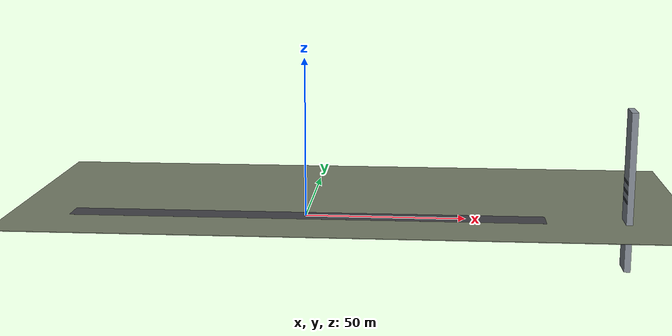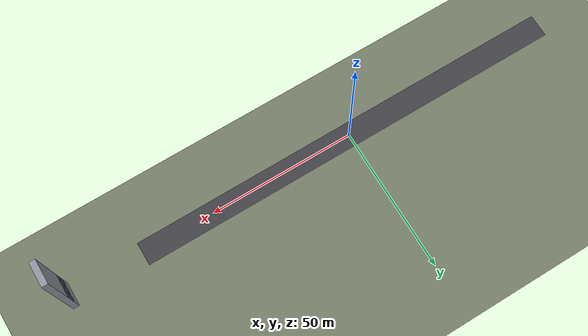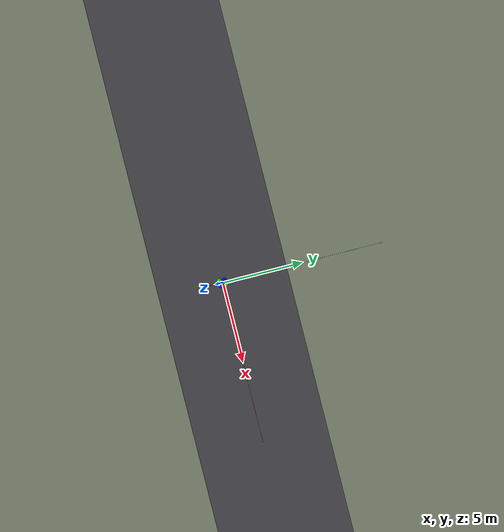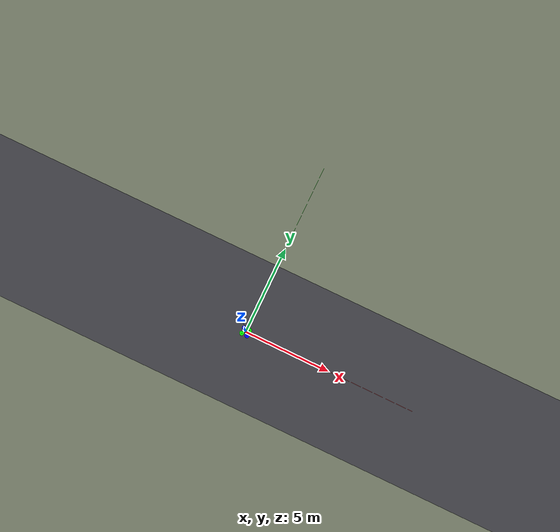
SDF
<?xml version="1.0" ?>
<sdf version="1.9">
  <world name="obstacle_course">
    <physics name="1ms" type="ignore">
      <max_step_size>0.001</max_step_size>
      <real_time_factor>1.0</real_time_factor>
    </physics>

    <plugin filename="gz-sim-physics-system"
      name="gz::sim::systems::Physics">
    </plugin>
    <plugin
      filename="gz-sim-sensors-system"
      name="gz::sim::systems::Sensors">
      <render_engine>ogre2</render_engine>
    </plugin>
    <plugin filename="gz-sim-user-commands-system"
      name="gz::sim::systems::UserCommands">
    </plugin>
    <plugin filename="gz-sim-scene-broadcaster-system"
      name="gz::sim::systems::SceneBroadcaster">
    </plugin>
    <plugin filename="gz-sim-imu-system"
      name="gz::sim::systems::Imu">
    </plugin>
    <plugin filename="gz-sim-navsat-system"
      name="gz::sim::systems::NavSat">
    </plugin>

    <scene>
      <ambient>1.0 1.0 1.0</ambient>
      <background>0.8 0.8 0.8</background>
      <sky></sky>
    </scene>

    <spherical_coordinates>
      <latitude_deg>-35.363262</latitude_deg>
      <longitude_deg>149.165237</longitude_deg>
      <elevation>584</elevation>
      <heading_deg>0</heading_deg>
      <surface_model>EARTH_WGS84</surface_model>
    </spherical_coordinates>

    <light type="directional" name="sun">
      <cast_shadows>true</cast_shadows>
      <pose>0 0 10 0 0 0</pose>
      <diffuse>0.8 0.8 0.8 1</diffuse>
      <specular>0.8 0.8 0.8 1</specular>
      <attenuation>
        <range>1000</range>
        <constant>0.9</constant>
        <linear>0.01</linear>
        <quadratic>0.001</quadratic>
      </attenuation>
      <direction>-0.5 0.1 -0.9</direction>
    </light>

    <!-- world axes + NavSat origin (required for SITL GPS) -->
    <model name="axes">
      <static>1</static>
      <link name="link">
        <visual name="r">
          <cast_shadows>0</cast_shadows>
          <pose>5 0 0.1 0 0 0</pose>
          <geometry>
            <box>
              <size>10 0.01 0.01</size>
            </box>
          </geometry>
          <material>
            <ambient>1 0 0 0.8</ambient>
            <diffuse>1 0 0 0.8</diffuse>
            <emissive>1 0 0 0.8</emissive>
            <specular>0.5 0.5 0.5 0.8</specular>
          </material>
        </visual>
        <visual name="g">
          <cast_shadows>0</cast_shadows>
          <pose>0 5 0.1 0 0 0</pose>
          <geometry>
            <box>
              <size>0.01 10 0.01</size>
            </box>
          </geometry>
          <material>
            <ambient>0 1 0 0.8</ambient>
            <diffuse>0 1 0 0.8</diffuse>
            <emissive>0 1 0 0.8</emissive>
            <specular>0.5 0.5 0.5 0.8</specular>
          </material>
        </visual>
        <visual name="b">
          <cast_shadows>0</cast_shadows>
          <pose>0 0 5.1 0 0 0</pose>
          <geometry>
            <box>
              <size>0.01 0.01 10</size>
            </box>
          </geometry>
          <material>
            <ambient>0 0 1 0.8</ambient>
            <diffuse>0 0 1 0.8</diffuse>
            <emissive>0 0 1 0.8</emissive>
            <specular>0.5 0.5 0.5 0.8</specular>
          </material>
        </visual>
        <sensor name="navsat_sensor" type="navsat">
          <always_on>1</always_on>
          <update_rate>1</update_rate>
        </sensor>
      </link>
    </model>

    <!-- self-contained ground plane.  Replaces model://runway, whose mesh
         URIs still needed GZ_SIM_RESOURCE_PATH (empty-world bug). -->
    <model name="ground">
      <static>1</static>
      <pose>0 0 -0.1 0 0 0</pose>
      <link name="link">
        <collision name="collision">
          <geometry>
            <box>
              <size>800 800 0.2</size>
            </box>
          </geometry>
        </collision>
        <visual name="visual">
          <geometry>
            <box>
              <size>800 800 0.2</size>
            </box>
          </geometry>
          <material>
            <ambient>0.45 0.48 0.4 1</ambient>
            <diffuse>0.45 0.48 0.4 1</diffuse>
            <specular>0.05 0.05 0.05 1</specular>
          </material>
        </visual>
      </link>
    </model>

    <!-- takeoff strip marking (visual only) -->
    <model name="runway_strip">
      <static>1</static>
      <pose>0 0 0.001 0 0 0</pose>
      <link name="link">
        <visual name="strip">
          <geometry>
            <box>
              <size>150 8 0.002</size>
            </box>
          </geometry>
          <material>
            <ambient>0.25 0.25 0.27 1</ambient>
            <diffuse>0.25 0.25 0.27 1</diffuse>
            <specular>0.05 0.05 0.05 1</specular>
          </material>
        </visual>
      </link>
    </model>

    <!-- the drone: F450 with OV5647-style camera -->
    <include>
      <uri>/home/ubuntu/Desktop/ROS2_sim/world_sim/models/sentinel_f450</uri>
      <pose degrees="true">0 0 0.195 0 0 0</pose>
    </include>

    <!-- Simplified course: a single wall in front of the drone       -->
    <!-- (x = 140, y -4..4) blocking the direct route to the target   -->
    <!-- waypoint.  The A* path simply routes around either end.       -->
    <model name="box_west">
      <static>1</static>
      <pose>100 0 10 0 0 0</pose>
      <link name="link">
        <collision name="collision">
          <geometry>
            <box>
              <size>2 8 50</size>
            </box>
          </geometry>
        </collision>
        <visual name="visual">
          <geometry>
            <box>
              <size>2 8 50</size>
            </box>
          </geometry>
          <material>
            <ambient>0.55 0.58 0.62 1</ambient>
            <diffuse>0.55 0.58 0.62 1</diffuse>
            <specular>0.15 0.15 0.15 1</specular>
          </material>
        </visual>

        <!-- floor stripes on the front face (visual only): give the
             depth model some texture to latch onto.  The visible stripe
             face sits slightly in front of the wall plane (x = -1). -->
        <visual name="stripe_1">
          <pose>-1.03 0 -3 0 0 0</pose>
          <geometry>
            <box>
              <size>0.06 7.96 0.8</size>
            </box>
          </geometry>
          <material>
            <ambient>0.25 0.27 0.3 1</ambient>
            <diffuse>0.25 0.27 0.3 1</diffuse>
          </material>
        </visual>
        <visual name="stripe_2">
          <pose>-1.03 0 0 0 0 0</pose>
          <geometry>
            <box>
              <size>0.06 7.96 0.8</size>
            </box>
          </geometry>
          <material>
            <ambient>0.25 0.27 0.3 1</ambient>
            <diffuse>0.25 0.27 0.3 1</diffuse>
          </material>
        </visual>
        <visual name="stripe_3">
          <pose>-1.03 0 3 0 0 0</pose>
          <geometry>
            <box>
              <size>0.06 7.96 0.8</size>
            </box>
          </geometry>
          <material>
            <ambient>0.25 0.27 0.3 1</ambient>
            <diffuse>0.25 0.27 0.3 1</diffuse>
          </material>
        </visual>
      </link>
    </model>

  </world>
</sdf>

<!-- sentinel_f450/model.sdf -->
<sdf version="1.9">
  <model name="sentinel_f450">
    <pose>0 0 0 0 0 0</pose>

    <link name="base_link">
      <velocity_decay>
        <linear>0.0</linear>
        <angular>0.0</angular>
      </velocity_decay>
      <inertial>
        <pose>0 0 0 0 0 0</pose>
        <mass>1.2</mass>
        <inertia>
          <ixx>0.011</ixx>
          <ixy>0</ixy>
          <ixz>0</ixz>
          <iyy>0.011</iyy>
          <iyz>0</iyz>
          <izz>0.019</izz>
        </inertia>
      </inertial>

      <!-- top plate -->
      <collision name="top_plate_collision">
        <pose>0 0 -0.01 0 0 0</pose>
        <geometry>
          <box>
            <size>0.17 0.17 0.012</size>
          </box>
        </geometry>
      </collision>
      <visual name="top_plate_visual">
        <pose>0 0 -0.01 0 0 0</pose>
        <geometry>
          <box>
            <size>0.17 0.17 0.012</size>
          </box>
        </geometry>
        <material>
          <ambient>0.12 0.12 0.12 1</ambient>
          <diffuse>0.12 0.12 0.12 1</diffuse>
          <specular>0.3 0.3 0.3 1</specular>
        </material>
      </visual>

      <!-- bottom plate -->
      <collision name="bottom_plate_collision">
        <pose>0 0 -0.038 0 0 0</pose>
        <geometry>
          <box>
            <size>0.17 0.17 0.012</size>
          </box>
        </geometry>
      </collision>
      <visual name="bottom_plate_visual">
        <pose>0 0 -0.038 0 0 0</pose>
        <geometry>
          <box>
            <size>0.17 0.17 0.012</size>
          </box>
        </geometry>
        <material>
          <ambient>0.12 0.12 0.12 1</ambient>
          <diffuse>0.12 0.12 0.12 1</diffuse>
          <specular>0.3 0.3 0.3 1</specular>
        </material>
      </visual>

      <!-- battery (visual only) -->
      <visual name="battery_visual">
        <pose>-0.02 0 -0.056 0 0 0</pose>
        <geometry>
          <box>
            <size>0.09 0.04 0.028</size>
          </box>
        </geometry>
        <material>
          <ambient>0.08 0.15 0.45 1</ambient>
          <diffuse>0.08 0.15 0.45 1</diffuse>
          <specular>0.2 0.2 0.2 1</specular>
        </material>
      </visual>

      <!-- arms (X layout, 45 deg) -->
      <collision name="arm_fl_collision">
        <pose>0.05 0.05 -0.026 0 0 0.7854</pose>
        <geometry>
          <box>
            <size>0.19 0.03 0.015</size>
          </box>
        </geometry>
      </collision>
      <visual name="arm_fl_visual">
        <pose>0.05 0.05 -0.026 0 0 0.7854</pose>
        <geometry>
          <box>
            <size>0.19 0.03 0.015</size>
          </box>
        </geometry>
        <material>
          <ambient>0.75 0.75 0.75 1</ambient>
          <diffuse>0.75 0.75 0.75 1</diffuse>
          <specular>0.2 0.2 0.2 1</specular>
        </material>
      </visual>

      <collision name="arm_fr_collision">
        <pose>0.05 -0.05 -0.026 0 0 -0.7854</pose>
        <geometry>
          <box>
            <size>0.19 0.03 0.015</size>
          </box>
        </geometry>
      </collision>
      <visual name="arm_fr_visual">
        <pose>0.05 -0.05 -0.026 0 0 -0.7854</pose>
        <geometry>
          <box>
            <size>0.19 0.03 0.015</size>
          </box>
        </geometry>
        <material>
          <ambient>0.75 0.75 0.75 1</ambient>
          <diffuse>0.75 0.75 0.75 1</diffuse>
          <specular>0.2 0.2 0.2 1</specular>
        </material>
      </visual>

      <collision name="arm_rl_collision">
        <pose>-0.05 0.05 -0.026 0 0 2.3562</pose>
        <geometry>
          <box>
            <size>0.19 0.03 0.015</size>
          </box>
        </geometry>
      </collision>
      <visual name="arm_rl_visual">
        <pose>-0.05 0.05 -0.026 0 0 2.3562</pose>
        <geometry>
          <box>
            <size>0.19 0.03 0.015</size>
          </box>
        </geometry>
        <material>
          <ambient>0.55 0.55 0.55 1</ambient>
          <diffuse>0.55 0.55 0.55 1</diffuse>
          <specular>0.2 0.2 0.2 1</specular>
        </material>
      </visual>

      <collision name="arm_rr_collision">
        <pose>-0.05 -0.05 -0.026 0 0 -2.3562</pose>
        <geometry>
          <box>
            <size>0.19 0.03 0.015</size>
          </box>
        </geometry>
      </collision>
      <visual name="arm_rr_visual">
        <pose>-0.05 -0.05 -0.026 0 0 -2.3562</pose>
        <geometry>
          <box>
            <size>0.19 0.03 0.015</size>
          </box>
        </geometry>
        <material>
          <ambient>0.55 0.55 0.55 1</ambient>
          <diffuse>0.55 0.55 0.55 1</diffuse>
          <specular>0.2 0.2 0.2 1</specular>
        </material>
      </visual>

      <!-- motor pods -->
      <collision name="pod_fl_collision">
        <pose>0.159 0.159 0.015 0 0 0</pose>
        <geometry>
          <cylinder>
            <radius>0.02</radius>
            <length>0.03</length>
          </cylinder>
        </geometry>
      </collision>
      <visual name="pod_fl_visual">
        <pose>0.159 0.159 0.015 0 0 0</pose>
        <geometry>
          <cylinder>
            <radius>0.02</radius>
            <length>0.03</length>
          </cylinder>
        </geometry>
        <material>
          <ambient>0.8 0.1 0.1 1</ambient>
          <diffuse>0.8 0.1 0.1 1</diffuse>
          <specular>0.3 0.3 0.3 1</specular>
        </material>
      </visual>

      <collision name="pod_fr_collision">
        <pose>0.159 -0.159 0.015 0 0 0</pose>
        <geometry>
          <cylinder>
            <radius>0.02</radius>
            <length>0.03</length>
          </cylinder>
        </geometry>
      </collision>
      <visual name="pod_fr_visual">
        <pose>0.159 -0.159 0.015 0 0 0</pose>
        <geometry>
          <cylinder>
            <radius>0.02</radius>
            <length>0.03</length>
          </cylinder>
        </geometry>
        <material>
          <ambient>0.8 0.1 0.1 1</ambient>
          <diffuse>0.8 0.1 0.1 1</diffuse>
          <specular>0.3 0.3 0.3 1</specular>
        </material>
      </visual>

      <collision name="pod_rl_collision">
        <pose>-0.159 0.159 0.015 0 0 0</pose>
        <geometry>
          <cylinder>
            <radius>0.02</radius>
            <length>0.03</length>
          </cylinder>
        </geometry>
      </collision>
      <visual name="pod_rl_visual">
        <pose>-0.159 0.159 0.015 0 0 0</pose>
        <geometry>
          <cylinder>
            <radius>0.02</radius>
            <length>0.03</length>
          </cylinder>
        </geometry>
        <material>
          <ambient>0.2 0.2 0.2 1</ambient>
          <diffuse>0.2 0.2 0.2 1</diffuse>
          <specular>0.3 0.3 0.3 1</specular>
        </material>
      </visual>

      <collision name="pod_rr_collision">
        <pose>-0.159 -0.159 0.015 0 0 0</pose>
        <geometry>
          <cylinder>
            <radius>0.02</radius>
            <length>0.03</length>
          </cylinder>
        </geometry>
      </collision>
      <visual name="pod_rr_visual">
        <pose>-0.159 -0.159 0.015 0 0 0</pose>
        <geometry>
          <cylinder>
            <radius>0.02</radius>
            <length>0.03</length>
          </cylinder>
        </geometry>
        <material>
          <ambient>0.2 0.2 0.2 1</ambient>
          <diffuse>0.2 0.2 0.2 1</diffuse>
          <specular>0.3 0.3 0.3 1</specular>
        </material>
      </visual>

      <!-- landing skids -->
      <collision name="skid_fl_collision">
        <pose>0.11 0.11 -0.09 0 0 0</pose>
        <geometry>
          <cylinder>
            <radius>0.008</radius>
            <length>0.10</length>
          </cylinder>
        </geometry>
      </collision>
      <visual name="skid_fl_visual">
        <pose>0.11 0.11 -0.09 0 0 0</pose>
        <geometry>
          <cylinder>
            <radius>0.008</radius>
            <length>0.10</length>
          </cylinder>
        </geometry>
        <material>
          <ambient>0.1 0.1 0.1 1</ambient>
          <diffuse>0.1 0.1 0.1 1</diffuse>
          <specular>0.2 0.2 0.2 1</specular>
        </material>
      </visual>

      <collision name="skid_fr_collision">
        <pose>0.11 -0.11 -0.09 0 0 0</pose>
        <geometry>
          <cylinder>
            <radius>0.008</radius>
            <length>0.10</length>
          </cylinder>
        </geometry>
      </collision>
      <visual name="skid_fr_visual">
        <pose>0.11 -0.11 -0.09 0 0 0</pose>
        <geometry>
          <cylinder>
            <radius>0.008</radius>
            <length>0.10</length>
          </cylinder>
        </geometry>
        <material>
          <ambient>0.1 0.1 0.1 1</ambient>
          <diffuse>0.1 0.1 0.1 1</diffuse>
          <specular>0.2 0.2 0.2 1</specular>
        </material>
      </visual>

      <collision name="skid_rl_collision">
        <pose>-0.11 0.11 -0.09 0 0 0</pose>
        <geometry>
          <cylinder>
            <radius>0.008</radius>
            <length>0.10</length>
          </cylinder>
        </geometry>
      </collision>
      <visual name="skid_rl_visual">
        <pose>-0.11 0.11 -0.09 0 0 0</pose>
        <geometry>
          <cylinder>
            <radius>0.008</radius>
            <length>0.10</length>
          </cylinder>
        </geometry>
        <material>
          <ambient>0.1 0.1 0.1 1</ambient>
          <diffuse>0.1 0.1 0.1 1</diffuse>
          <specular>0.2 0.2 0.2 1</specular>
        </material>
      </visual>

      <collision name="skid_rr_collision">
        <pose>-0.11 -0.11 -0.09 0 0 0</pose>
        <geometry>
          <cylinder>
            <radius>0.008</radius>
            <length>0.10</length>
          </cylinder>
        </geometry>
      </collision>
      <visual name="skid_rr_visual">
        <pose>-0.11 -0.11 -0.09 0 0 0</pose>
        <geometry>
          <cylinder>
            <radius>0.008</radius>
            <length>0.10</length>
          </cylinder>
        </geometry>
        <material>
          <ambient>0.1 0.1 0.1 1</ambient>
          <diffuse>0.1 0.1 0.1 1</diffuse>
          <specular>0.2 0.2 0.2 1</specular>
        </material>
      </visual>
    </link>

    <!-- IMU (conventions copied from iris_with_standoffs) -->
    <link name="imu_link">
      <inertial>
        <pose>0 0 0 0 0 0</pose>
        <mass>0.15</mass>
        <inertia>
          <ixx>0.00001</ixx>
          <ixy>0</ixy>
          <ixz>0</ixz>
          <iyy>0.00002</iyy>
          <iyz>0</iyz>
          <izz>0.00002</izz>
        </inertia>
      </inertial>
      <sensor name="imu_sensor" type="imu">
        <gz_frame_id>imu_link</gz_frame_id>
        <pose degrees="true">0 0 0 180 0 0</pose>
        <always_on>1</always_on>
        <update_rate>1000.0</update_rate>
      </sensor>
    </link>
    <joint name="imu_joint" type="revolute">
      <child>imu_link</child>
      <parent>base_link</parent>
      <axis>
        <xyz>0 0 1</xyz>
        <limit>
          <lower>0</lower>
          <upper>0</upper>
          <effort>0</effort>
          <velocity>0</velocity>
        </limit>
        <dynamics>
          <damping>1.0</damping>
        </dynamics>
      </axis>
    </joint>

    <!-- rotors: 10" props, X layout -->
    <link name="rotor_0">
      <pose>0.159 -0.159 0.02 0 0 0</pose>
      <inertial>
        <pose>0 0 0 0 0 0</pose>
        <mass>0.025</mass>
        <inertia>
          <ixx>9.75e-06</ixx>
          <ixy>0</ixy>
          <ixz>0</ixz>
          <iyy>0.000166704</iyy>
          <iyz>0</iyz>
          <izz>0.000167604</izz>
        </inertia>
      </inertial>
      <collision name="collision">
        <geometry>
          <cylinder>
            <length>0.005</length>
            <radius>0.127</radius>
          </cylinder>
        </geometry>
      </collision>
      <visual name="visual">
        <geometry>
          <cylinder>
            <length>0.005</length>
            <radius>0.127</radius>
          </cylinder>
        </geometry>
        <material>
          <ambient>0 0 1 1</ambient>
          <diffuse>0 0 1 1</diffuse>
          <specular>0.5 0.5 0.5 1</specular>
        </material>
      </visual>
    </link>
    <joint name="rotor_0_joint" type="revolute">
      <child>rotor_0</child>
      <parent>base_link</parent>
      <axis>
        <xyz>0 0 1</xyz>
        <limit>
          <lower>-1e+16</lower>
          <upper>1e+16</upper>
        </limit>
        <dynamics>
          <damping>0.004</damping>
        </dynamics>
      </axis>
    </joint>

    <link name="rotor_1">
      <pose>-0.159 0.159 0.02 0 0 0</pose>
      <inertial>
        <pose>0 0 0 0 0 0</pose>
        <mass>0.025</mass>
        <inertia>
          <ixx>9.75e-06</ixx>
          <ixy>0</ixy>
          <ixz>0</ixz>
          <iyy>0.000166704</iyy>
          <iyz>0</iyz>
          <izz>0.000167604</izz>
        </inertia>
      </inertial>
      <collision name="collision">
        <geometry>
          <cylinder>
            <length>0.005</length>
            <radius>0.127</radius>
          </cylinder>
        </geometry>
      </collision>
      <visual name="visual">
        <geometry>
          <cylinder>
            <length>0.005</length>
            <radius>0.127</radius>
          </cylinder>
        </geometry>
        <material>
          <ambient>0 0 1 1</ambient>
          <diffuse>0 0 1 1</diffuse>
          <specular>0.5 0.5 0.5 1</specular>
        </material>
      </visual>
    </link>
    <joint name="rotor_1_joint" type="revolute">
      <child>rotor_1</child>
      <parent>base_link</parent>
      <axis>
        <xyz>0 0 1</xyz>
        <limit>
          <lower>-1e+16</lower>
          <upper>1e+16</upper>
        </limit>
        <dynamics>
          <damping>0.004</damping>
        </dynamics>
      </axis>
    </joint>

    <link name="rotor_2">
      <pose>0.159 0.159 0.02 0 0 0</pose>
      <inertial>
        <pose>0 0 0 0 0 0</pose>
        <mass>0.025</mass>
        <inertia>
          <ixx>9.75e-06</ixx>
          <ixy>0</ixy>
          <ixz>0</ixz>
          <iyy>0.000166704</iyy>
          <iyz>0</iyz>
          <izz>0.000167604</izz>
        </inertia>
      </inertial>
      <collision name="collision">
        <geometry>
          <cylinder>
            <length>0.005</length>
            <radius>0.127</radius>
          </cylinder>
        </geometry>
      </collision>
      <visual name="visual">
        <geometry>
          <cylinder>
            <length>0.005</length>
            <radius>0.127</radius>
          </cylinder>
        </geometry>
        <material>
          <ambient>0 1 0 1</ambient>
          <diffuse>0 1 0 1</diffuse>
          <specular>0.5 0.5 0.5 1</specular>
        </material>
      </visual>
    </link>
    <joint name="rotor_2_joint" type="revolute">
      <child>rotor_2</child>
      <parent>base_link</parent>
      <axis>
        <xyz>0 0 1</xyz>
        <limit>
          <lower>-1e+16</lower>
          <upper>1e+16</upper>
        </limit>
        <dynamics>
          <damping>0.004</damping>
        </dynamics>
      </axis>
    </joint>

    <link name="rotor_3">
      <pose>-0.159 -0.159 0.02 0 0 0</pose>
      <inertial>
        <pose>0 0 0 0 0 0</pose>
        <mass>0.025</mass>
        <inertia>
          <ixx>9.75e-06</ixx>
          <ixy>0</ixy>
          <ixz>0</ixz>
          <iyy>0.000166704</iyy>
          <iyz>0</iyz>
          <izz>0.000167604</izz>
        </inertia>
      </inertial>
      <collision name="collision">
        <geometry>
          <cylinder>
            <length>0.005</length>
            <radius>0.127</radius>
          </cylinder>
        </geometry>
      </collision>
      <visual name="visual">
        <geometry>
          <cylinder>
            <length>0.005</length>
            <radius>0.127</radius>
          </cylinder>
        </geometry>
        <material>
          <ambient>0 1 0 1</ambient>
          <diffuse>0 1 0 1</diffuse>
          <specular>0.5 0.5 0.5 1</specular>
        </material>
      </visual>
    </link>
    <joint name="rotor_3_joint" type="revolute">
      <child>rotor_3</child>
      <parent>base_link</parent>
      <axis>
        <xyz>0 0 1</xyz>
        <limit>
          <lower>-1e+16</lower>
          <upper>1e+16</upper>
        </limit>
        <dynamics>
          <damping>0.004</damping>
        </dynamics>
      </axis>
    </joint>

    <!-- forward-facing OV5647-style camera (pose copied from iris gimbal) -->
    <link name="camera_link">
      <pose degrees="true">0 -0.01 -0.10 90 0 90</pose>
      <inertial>
        <mass>0.03</mass>
        <inertia>
          <ixx>1e-05</ixx>
          <ixy>0</ixy>
          <ixz>0</ixz>
          <iyy>1e-05</iyy>
          <iyz>0</iyz>
          <izz>1e-05</izz>
        </inertia>
      </inertial>
      <visual name="camera_body_visual">
        <geometry>
          <box>
            <size>0.04 0.04 0.03</size>
          </box>
        </geometry>
        <material>
          <ambient>0.08 0.08 0.08 1</ambient>
          <diffuse>0.08 0.08 0.08 1</diffuse>
          <specular>0.3 0.3 0.3 1</specular>
        </material>
      </visual>

      <sensor name="camera" type="camera">
        <gz_frame_id>camera_link</gz_frame_id>
        <pose>0 0 0 -1.57 -1.57 0</pose>
        <camera>
          <!-- OV5647: 53.5 deg horizontal FOV (user spec) -->
          <horizontal_fov>0.93375</horizontal_fov>
          <image>
            <width>640</width>
            <height>480</height>
            <format>R8G8B8</format>
          </image>
          <clip>
            <near>0.05</near>
            <far>150</far>
          </clip>
        </camera>
        <always_on>1</always_on>
        <!-- real OV5647 does 58.92 fps @ 640x480; 40 keeps sim CPU happy -->
        <update_rate>40</update_rate>
        <visualize>0</visualize>

        <!-- stream MPEG-TS to the depth_node's default UDP port.
             use_basic_pipeline MUST be false: true sends raw RTP H264,
             which the depth node's FFmpeg opener cannot demux. -->
        <plugin name="GstCameraPlugin" filename="GstCameraPlugin">
          <udp_host>127.0.0.1</udp_host>
          <udp_port>5600</udp_port>
          <use_basic_pipeline>false</use_basic_pipeline>
          <use_cuda>false</use_cuda>
        </plugin>
      </sensor>

      <sensor name="depth_camera" type="depth_camera">
        <gz_frame_id>camera_link</gz_frame_id>
        <pose>0 0 0 -1.57 -1.57 0</pose>
        <camera>
          <horizontal_fov>0.93375</horizontal_fov>
          <image>
            <width>640</width>
            <height>480</height>
          </image>
          <clip>
            <near>0.1</near>
            <far>60</far>
          </clip>
        </camera>
        <always_on>1</always_on>
        <update_rate>15</update_rate>
        <visualize>0</visualize>
      </sensor>
    </link>
    <joint name="camera_joint" type="fixed">
      <parent>base_link</parent>
      <child>camera_link</child>
    </joint>

    <!-- ================= plugins ================= -->
    <plugin filename="gz-sim-joint-state-publisher-system"
      name="gz::sim::systems::JointStatePublisher">
    </plugin>

    <plugin filename="gz-sim-lift-drag-system"
        name="gz::sim::systems::LiftDrag">
      <a0>0.3</a0>
      <alpha_stall>1.4</alpha_stall>
      <cla>4.2500</cla>
      <cda>0.10</cda>
      <cma>0.0</cma>
      <cla_stall>-0.025</cla_stall>
      <cda_stall>0.0</cda_stall>
      <cma_stall>0.0</cma_stall>
      <area>0.002</area>
      <air_density>1.2041</air_density>
      <cp>0.084 0 0</cp>
      <forward>0 1 0</forward>
      <upward>0 0 1</upward>
      <link_name>rotor_0</link_name>
    </plugin>
    <plugin filename="gz-sim-lift-drag-system"
        name="gz::sim::systems::LiftDrag">
      <a0>0.3</a0>
      <alpha_stall>1.4</alpha_stall>
      <cla>4.2500</cla>
      <cda>0.10</cda>
      <cma>0.0</cma>
      <cla_stall>-0.025</cla_stall>
      <cda_stall>0.0</cda_stall>
      <cma_stall>0.0</cma_stall>
      <area>0.002</area>
      <air_density>1.2041</air_density>
      <cp>-0.084 0 0</cp>
      <forward>0 -1 0</forward>
      <upward>0 0 1</upward>
      <link_name>rotor_0</link_name>
    </plugin>

    <plugin filename="gz-sim-lift-drag-system"
        name="gz::sim::systems::LiftDrag">
      <a0>0.3</a0>
      <alpha_stall>1.4</alpha_stall>
      <cla>4.2500</cla>
      <cda>0.10</cda>
      <cma>0.0</cma>
      <cla_stall>-0.025</cla_stall>
      <cda_stall>0.0</cda_stall>
      <cma_stall>0.0</cma_stall>
      <area>0.002</area>
      <air_density>1.2041</air_density>
      <cp>0.084 0 0</cp>
      <forward>0 1 0</forward>
      <upward>0 0 1</upward>
      <link_name>rotor_1</link_name>
    </plugin>
    <plugin filename="gz-sim-lift-drag-system"
        name="gz::sim::systems::LiftDrag">
      <a0>0.3</a0>
      <alpha_stall>1.4</alpha_stall>
      <cla>4.2500</cla>
      <cda>0.10</cda>
      <cma>0.0</cma>
      <cla_stall>-0.025</cla_stall>
      <cda_stall>0.0</cda_stall>
      <cma_stall>0.0</cma_stall>
      <area>0.002</area>
      <air_density>1.2041</air_density>
      <cp>-0.084 0 0</cp>
      <forward>0 -1 0</forward>
      <upward>0 0 1</upward>
      <link_name>rotor_1</link_name>
    </plugin>

    <plugin filename="gz-sim-lift-drag-system"
        name="gz::sim::systems::LiftDrag">
      <a0>0.3</a0>
      <alpha_stall>1.4</alpha_stall>
      <cla>4.2500</cla>
      <cda>0.10</cda>
      <cma>0.0</cma>
      <cla_stall>-0.025</cla_stall>
      <cda_stall>0.0</cda_stall>
      <cma_stall>0.0</cma_stall>
      <area>0.002</area>
      <air_density>1.2041</air_density>
      <cp>0.084 0 0</cp>
      <forward>0 -1 0</forward>
      <upward>0 0 1</upward>
      <link_name>rotor_2</link_name>
    </plugin>
    <plugin filename="gz-sim-lift-drag-system"
        name="gz::sim::systems::LiftDrag">
      <a0>0.3</a0>
      <alpha_stall>1.4</alpha_stall>
      <cla>4.2500</cla>
      <cda>0.10</cda>
      <cma>0.0</cma>
      <cla_stall>-0.025</cla_stall>
      <cda_stall>0.0</cda_stall>
      <cma_stall>0.0</cma_stall>
      <area>0.002</area>
      <air_density>1.2041</air_density>
      <cp>-0.084 0 0</cp>
      <forward>0 1 0</forward>
      <upward>0 0 1</upward>
      <link_name>rotor_2</link_name>
    </plugin>

    <plugin filename="gz-sim-lift-drag-system"
        name="gz::sim::systems::LiftDrag">
      <a0>0.3</a0>
      <alpha_stall>1.4</alpha_stall>
      <cla>4.2500</cla>
      <cda>0.10</cda>
      <cma>0.0</cma>
      <cla_stall>-0.025</cla_stall>
      <cda_stall>0.0</cda_stall>
      <cma_stall>0.0</cma_stall>
      <area>0.002</area>
      <air_density>1.2041</air_density>
      <cp>0.084 0 0</cp>
      <forward>0 -1 0</forward>
      <upward>0 0 1</upward>
      <link_name>rotor_3</link_name>
    </plugin>
    <plugin filename="gz-sim-lift-drag-system"
        name="gz::sim::systems::LiftDrag">
      <a0>0.3</a0>
      <alpha_stall>1.4</alpha_stall>
      <cla>4.2500</cla>
      <cda>0.10</cda>
      <cma>0.0</cma>
      <cla_stall>-0.025</cla_stall>
      <cda_stall>0.0</cda_stall>
      <cma_stall>0.0</cma_stall>
      <area>0.002</area>
      <air_density>1.2041</air_density>
      <cp>-0.084 0 0</cp>
      <forward>0 1 0</forward>
      <upward>0 0 1</upward>
      <link_name>rotor_3</link_name>
    </plugin>

    <plugin filename="gz-sim-apply-joint-force-system"
      name="gz::sim::systems::ApplyJointForce">
      <joint_name>rotor_0_joint</joint_name>
    </plugin>
    <plugin filename="gz-sim-apply-joint-force-system"
      name="gz::sim::systems::ApplyJointForce">
      <joint_name>rotor_1_joint</joint_name>
    </plugin>
    <plugin filename="gz-sim-apply-joint-force-system"
      name="gz::sim::systems::ApplyJointForce">
      <joint_name>rotor_2_joint</joint_name>
    </plugin>
    <plugin filename="gz-sim-apply-joint-force-system"
      name="gz::sim::systems::ApplyJointForce">
      <joint_name>rotor_3_joint</joint_name>
    </plugin>

    <!-- SITL bridge (same config as iris_with_gimbal, no gimbal) -->
    <plugin name="ArduPilotPlugin" filename="ArduPilotPlugin">
      <fdm_addr>127.0.0.1</fdm_addr>
      <fdm_port_in>9002</fdm_port_in>
      <connectionTimeoutMaxCount>5</connectionTimeoutMaxCount>
      <lock_step>1</lock_step>
      <no_time_sync>1</no_time_sync>

      <modelXYZToAirplaneXForwardZDown degrees="true">0 0 0 180 0 0</modelXYZToAirplaneXForwardZDown>
      <gazeboXYZToNED degrees="true">0 0 0 180 0 90</gazeboXYZToNED>

      <imuName>imu_link::imu_sensor</imuName>

      <control channel="0">
        <jointName>rotor_0_joint</jointName>
        <useForce>1</useForce>
        <multiplier>838</multiplier>
        <offset>0</offset>
        <servo_min>1100</servo_min>
        <servo_max>1900</servo_max>
        <type>VELOCITY</type>
        <p_gain>0.20</p_gain>
        <i_gain>0</i_gain>
        <d_gain>0</d_gain>
        <i_max>0</i_max>
        <i_min>0</i_min>
        <cmd_max>2.5</cmd_max>
        <cmd_min>-2.5</cmd_min>
        <controlVelocitySlowdownSim>1</controlVelocitySlowdownSim>
      </control>

      <control channel="1">
        <jointName>rotor_1_joint</jointName>
        <useForce>1</useForce>
        <multiplier>838</multiplier>
        <offset>0</offset>
        <servo_min>1100</servo_min>
        <servo_max>1900</servo_max>
        <type>VELOCITY</type>
        <p_gain>0.20</p_gain>
        <i_gain>0</i_gain>
        <d_gain>0</d_gain>
        <i_max>0</i_max>
        <i_min>0</i_min>
        <cmd_max>2.5</cmd_max>
        <cmd_min>-2.5</cmd_min>
        <controlVelocitySlowdownSim>1</controlVelocitySlowdownSim>
      </control>

      <control channel="2">
        <jointName>rotor_2_joint</jointName>
        <useForce>1</useForce>
        <multiplier>-838</multiplier>
        <offset>0</offset>
        <servo_min>1100</servo_min>
        <servo_max>1900</servo_max>
        <type>VELOCITY</type>
        <p_gain>0.20</p_gain>
        <i_gain>0</i_gain>
        <d_gain>0</d_gain>
        <i_max>0</i_max>
        <i_min>0</i_min>
        <cmd_max>2.5</cmd_max>
        <cmd_min>-2.5</cmd_min>
        <controlVelocitySlowdownSim>1</controlVelocitySlowdownSim>
      </control>

      <control channel="3">
        <jointName>rotor_3_joint</jointName>
        <useForce>1</useForce>
        <multiplier>-838</multiplier>
        <offset>0</offset>
        <servo_min>1100</servo_min>
        <servo_max>1900</servo_max>
        <type>VELOCITY</type>
        <p_gain>0.20</p_gain>
        <i_gain>0</i_gain>
        <d_gain>0</d_gain>
        <i_max>0</i_max>
        <i_min>0</i_min>
        <cmd_max>2.5</cmd_max>
        <cmd_min>-2.5</cmd_min>
        <controlVelocitySlowdownSim>1</controlVelocitySlowdownSim>
      </control>
    </plugin>

  </model>
</sdf>
